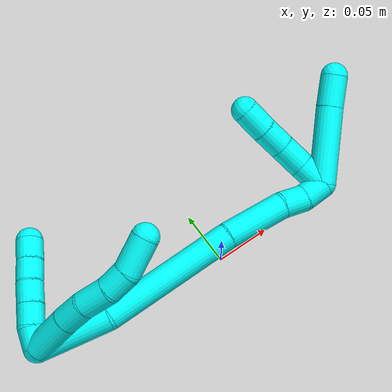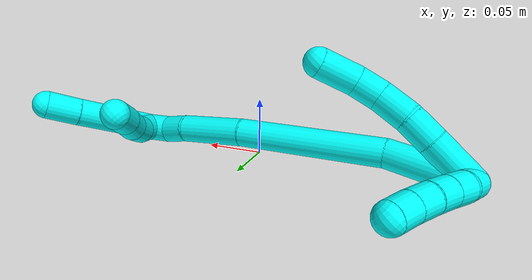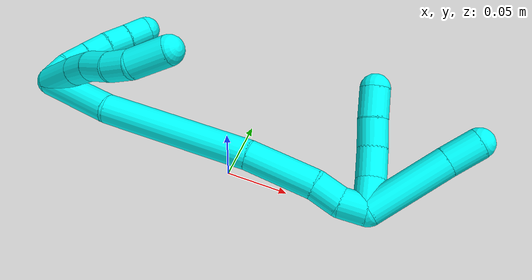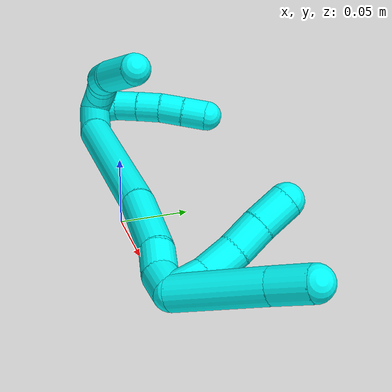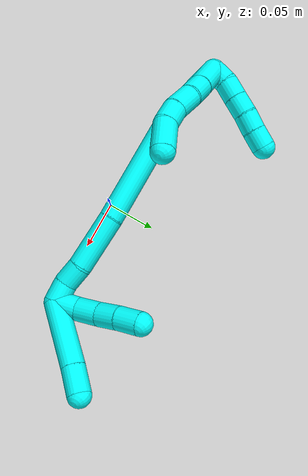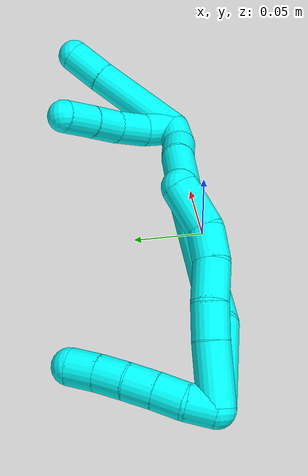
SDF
<sdf version="1.7">
 <world name="default">
  <model name="photoneo_s_sensor">
   <static>1</static>
   <pose>0 0 2 1.57079 1.57079 3.14159</pose>
   <link name="link">
    <inertial><mass>0.1</mass></inertial>
    <sensor name="sensor" type="depth">
     <update_rate>30</update_rate>
     <camera>
      <horizontal_fov>1.22</horizontal_fov>
      <image><width>1920</width><height>1200</height><format>B8G8R8</format></image>
      <clip><near>0.1</near><far>4</far></clip>
      <depth_camera><output>points</output></depth_camera>
     </camera>
     <plugin name="camera_plugin" filename="libgazebo_ros_depth_camera.so">
      <baseline>0.2</baseline>
      <alwaysOn>1</alwaysOn>
      <updateRate>0.0</updateRate>
      <cameraName>camera_ir</cameraName>
      <imageTopicName>/camera/color/image_raw</imageTopicName>
      <cameraInfoTopicName>/camera/color/camera_info</cameraInfoTopicName>
      <depthImageTopicName>/camera/depth/image_raw</depthImageTopicName>
      <depthImageCameraInfoTopicName>/camera/depth/camera_info</depthImageCameraInfoTopicName>
      <pointCloudTopicName>/camera/depth/points</pointCloudTopicName>
      <frameName>fr_optical</frameName>
      <pointCloudCutoff>0.1</pointCloudCutoff>
      <pointCloudCutoffMax>2.0</pointCloudCutoffMax>
      <distortionK1>0</distortionK1>
      <distortionK2>0</distortionK2>
      <distortionK3>0</distortionK3>
      <distortionT1>0</distortionT1>
      <distortionT2>0</distortionT2>
      <CxPrime>0</CxPrime>
      <Cx>0</Cx>
      <Cy>0</Cy>
      <focalLength>0</focalLength>
      <hackBaseline>0</hackBaseline>
     </plugin>
    </sensor>
   </link>
  </model>
  <model name="3">
   <static>0</static>
   <link name="3">
    <collision name="collision-cylinder-e_1_2_8">
     <pose>-0.000124 2e-06 0.021214 -0.000113 -0.005865 0</pose>
     <geometry><cylinder><radius>0.0125</radius><length>0.042429</length></cylinder></geometry>
     <surface>
      <friction><ode><mu>1.16</mu><mu2>1.16</mu2><slip1>0</slip1><slip2>0</slip2></ode></friction>
      <contact><ode><kp>1e+06</kp><kd>1</kd><max_vel>0</max_vel><min_depth>0.001</min_depth></ode></contact>
     </surface>
    </collision>
    <visual name="visual-cylinder-e_1_2_8">
     <pose>-0.000124 2e-06 0.021214 -0.000113 -0.005865 0</pose>
     <geometry><cylinder><radius>0.0125</radius><length>0.042429</length></cylinder></geometry>
     <material><ambient>0.003922 1 0.996078 1</ambient></material>
    </visual>
    <collision name="collision-cylinder-e_2_8_9">
     <pose>-0.000378 -0.000912 0.054638 0.074917 -0.01051 -0.000394</pose>
     <geometry><cylinder><radius>0.0125</radius><length>0.024489</length></cylinder></geometry>
     <surface>
      <friction><ode><mu>1.16</mu><mu2>1.16</mu2><slip1>0</slip1><slip2>0</slip2></ode></friction>
      <contact><ode><kp>1e+06</kp><kd>1</kd><max_vel>0</max_vel><min_depth>0.001</min_depth></ode></contact>
     </surface>
    </collision>
    <visual name="visual-cylinder-e_2_8_9">
     <pose>-0.000378 -0.000912 0.054638 0.074917 -0.01051 -0.000394</pose>
     <geometry><cylinder><radius>0.0125</radius><length>0.024489</length></cylinder></geometry>
     <material><ambient>0.003922 1 0.996078 1</ambient></material>
    </visual>
    <collision name="collision-cylinder-e_3_9_10">
     <pose>0.000328 -0.005057 0.079927 0.242002 0.061878 0.007526</pose>
     <geometry><cylinder><radius>0.0125</radius><length>0.026996</length></cylinder></geometry>
     <surface>
      <friction><ode><mu>1.16</mu><mu2>1.16</mu2><slip1>0</slip1><slip2>0</slip2></ode></friction>
      <contact><ode><kp>1e+06</kp><kd>1</kd><max_vel>0</max_vel><min_depth>0.001</min_depth></ode></contact>
     </surface>
    </collision>
    <visual name="visual-cylinder-e_3_9_10">
     <pose>0.000328 -0.005057 0.079927 0.242002 0.061878 0.007526</pose>
     <geometry><cylinder><radius>0.0125</radius><length>0.026996</length></cylinder></geometry>
     <material><ambient>0.003922 1 0.996078 1</ambient></material>
    </visual>
    <collision name="collision-cylinder-e_4_10_11">
     <pose>0.003674 -0.009218 0.104012 0.084574 0.223496 0.009496</pose>
     <geometry><cylinder><radius>0.0125</radius><length>0.022654</length></cylinder></geometry>
     <surface>
      <friction><ode><mu>1.16</mu><mu2>1.16</mu2><slip1>0</slip1><slip2>0</slip2></ode></friction>
      <contact><ode><kp>1e+06</kp><kd>1</kd><max_vel>0</max_vel><min_depth>0.001</min_depth></ode></contact>
     </surface>
    </collision>
    <visual name="visual-cylinder-e_4_10_11">
     <pose>0.003674 -0.009218 0.104012 0.084574 0.223496 0.009496</pose>
     <geometry><cylinder><radius>0.0125</radius><length>0.022654</length></cylinder></geometry>
     <material><ambient>0.003922 1 0.996078 1</ambient></material>
    </visual>
    <collision name="collision-cylinder-e_5_11_6">
     <pose>0.012835 -0.006734 0.129968 -0.224682 0.409229 -0.046814</pose>
     <geometry><cylinder><radius>0.0125</radius><length>0.033432</length></cylinder></geometry>
     <surface>
      <friction><ode><mu>1.16</mu><mu2>1.16</mu2><slip1>0</slip1><slip2>0</slip2></ode></friction>
      <contact><ode><kp>1e+06</kp><kd>1</kd><max_vel>0</max_vel><min_depth>0.001</min_depth></ode></contact>
     </surface>
    </collision>
    <visual name="visual-cylinder-e_5_11_6">
     <pose>0.012835 -0.006734 0.129968 -0.224682 0.409229 -0.046814</pose>
     <geometry><cylinder><radius>0.0125</radius><length>0.033432</length></cylinder></geometry>
     <material><ambient>0.003922 1 0.996078 1</ambient></material>
    </visual>
    <collision name="collision-cylinder-e_1_2_12">
     <pose>0.005981 0.00736 0.003172 -1.16393 0.641094 -0.430136</pose>
     <geometry><cylinder><radius>0.0125</radius><length>0.02</length></cylinder></geometry>
     <surface>
      <friction><ode><mu>1.16</mu><mu2>1.16</mu2><slip1>0</slip1><slip2>0</slip2></ode></friction>
      <contact><ode><kp>1e+06</kp><kd>1</kd><max_vel>0</max_vel><min_depth>0.001</min_depth></ode></contact>
     </surface>
    </collision>
    <visual name="visual-cylinder-e_1_2_12">
     <pose>0.005981 0.00736 0.003172 -1.16393 0.641094 -0.430136</pose>
     <geometry><cylinder><radius>0.0125</radius><length>0.02</length></cylinder></geometry>
     <material><ambient>0.003922 1 0.996078 1</ambient></material>
    </visual>
    <collision name="collision-cylinder-e_2_12_13">
     <pose>0.019248 0.020157 0.010509 -0.916892 0.816309 -0.420522</pose>
     <geometry><cylinder><radius>0.0125</radius><length>0.02</length></cylinder></geometry>
     <surface>
      <friction><ode><mu>1.16</mu><mu2>1.16</mu2><slip1>0</slip1><slip2>0</slip2></ode></friction>
      <contact><ode><kp>1e+06</kp><kd>1</kd><max_vel>0</max_vel><min_depth>0.001</min_depth></ode></contact>
     </surface>
    </collision>
    <visual name="visual-cylinder-e_2_12_13">
     <pose>0.019248 0.020157 0.010509 -0.916892 0.816309 -0.420522</pose>
     <geometry><cylinder><radius>0.0125</radius><length>0.02</length></cylinder></geometry>
     <material><ambient>0.003922 1 0.996078 1</ambient></material>
    </visual>
    <collision name="collision-cylinder-e_3_13_14">
     <pose>0.033984 0.031068 0.018486 -0.962806 0.84062 -0.458745</pose>
     <geometry><cylinder><radius>0.0125</radius><length>0.02</length></cylinder></geometry>
     <surface>
      <friction><ode><mu>1.16</mu><mu2>1.16</mu2><slip1>0</slip1><slip2>0</slip2></ode></friction>
      <contact><ode><kp>1e+06</kp><kd>1</kd><max_vel>0</max_vel><min_depth>0.001</min_depth></ode></contact>
     </surface>
    </collision>
    <visual name="visual-cylinder-e_3_13_14">
     <pose>0.033984 0.031068 0.018486 -0.962806 0.84062 -0.458745</pose>
     <geometry><cylinder><radius>0.0125</radius><length>0.02</length></cylinder></geometry>
     <material><ambient>0.003922 1 0.996078 1</ambient></material>
    </visual>
    <collision name="collision-cylinder-e_4_14_15">
     <pose>0.049536 0.041221 0.025829 -0.924003 0.944355 -0.498051</pose>
     <geometry><cylinder><radius>0.0125</radius><length>0.02</length></cylinder></geometry>
     <surface>
      <friction><ode><mu>1.16</mu><mu2>1.16</mu2><slip1>0</slip1><slip2>0</slip2></ode></friction>
      <contact><ode><kp>1e+06</kp><kd>1</kd><max_vel>0</max_vel><min_depth>0.001</min_depth></ode></contact>
     </surface>
    </collision>
    <visual name="visual-cylinder-e_4_14_15">
     <pose>0.049536 0.041221 0.025829 -0.924003 0.944355 -0.498051</pose>
     <geometry><cylinder><radius>0.0125</radius><length>0.02</length></cylinder></geometry>
     <material><ambient>0.003922 1 0.996078 1</ambient></material>
    </visual>
    <collision name="collision-cylinder-e_5_15_5">
     <pose>0.065791 0.050865 0.032338 -1.03086 0.953321 -0.569183</pose>
     <geometry><cylinder><radius>0.0125</radius><length>0.02</length></cylinder></geometry>
     <surface>
      <friction><ode><mu>1.16</mu><mu2>1.16</mu2><slip1>0</slip1><slip2>0</slip2></ode></friction>
      <contact><ode><kp>1e+06</kp><kd>1</kd><max_vel>0</max_vel><min_depth>0.001</min_depth></ode></contact>
     </surface>
    </collision>
    <visual name="visual-cylinder-e_5_15_5">
     <pose>0.065791 0.050865 0.032338 -1.03086 0.953321 -0.569183</pose>
     <geometry><cylinder><radius>0.0125</radius><length>0.02</length></cylinder></geometry>
     <material><ambient>0.003922 1 0.996078 1</ambient></material>
    </visual>
    <collision name="collision-cylinder-e_1_2_16">
     <pose>0.011794 -0.01589 0.027865 0.518268 0.352323 0.094307</pose>
     <geometry><cylinder><radius>0.0125</radius><length>0.068354</length></cylinder></geometry>
     <surface>
      <friction><ode><mu>1.16</mu><mu2>1.16</mu2><slip1>0</slip1><slip2>0</slip2></ode></friction>
      <contact><ode><kp>1e+06</kp><kd>1</kd><max_vel>0</max_vel><min_depth>0.001</min_depth></ode></contact>
     </surface>
    </collision>
    <visual name="visual-cylinder-e_1_2_16">
     <pose>0.011794 -0.01589 0.027865 0.518268 0.352323 0.094307</pose>
     <geometry><cylinder><radius>0.0125</radius><length>0.068354</length></cylinder></geometry>
     <material><ambient>0.003922 1 0.996078 1</ambient></material>
    </visual>
    <collision name="collision-cylinder-e_2_16_17">
     <pose>0.058976 -0.053987 0.104007 0.43111 0.587511 0.132279</pose>
     <geometry><cylinder><radius>0.0125</radius><length>0.127689</length></cylinder></geometry>
     <surface>
      <friction><ode><mu>1.16</mu><mu2>1.16</mu2><slip1>0</slip1><slip2>0</slip2></ode></friction>
      <contact><ode><kp>1e+06</kp><kd>1</kd><max_vel>0</max_vel><min_depth>0.001</min_depth></ode></contact>
     </surface>
    </collision>
    <visual name="visual-cylinder-e_2_16_17">
     <pose>0.058976 -0.053987 0.104007 0.43111 0.587511 0.132279</pose>
     <geometry><cylinder><radius>0.0125</radius><length>0.127689</length></cylinder></geometry>
     <material><ambient>0.003922 1 0.996078 1</ambient></material>
    </visual>
    <collision name="collision-cylinder-e_3_17_18">
     <pose>0.111045 -0.088831 0.172624 0.555987 0.608408 0.178714</pose>
     <geometry><cylinder><radius>0.0125</radius><length>0.058368</length></cylinder></geometry>
     <surface>
      <friction><ode><mu>1.16</mu><mu2>1.16</mu2><slip1>0</slip1><slip2>0</slip2></ode></friction>
      <contact><ode><kp>1e+06</kp><kd>1</kd><max_vel>0</max_vel><min_depth>0.001</min_depth></ode></contact>
     </surface>
    </collision>
    <visual name="visual-cylinder-e_3_17_18">
     <pose>0.111045 -0.088831 0.172624 0.555987 0.608408 0.178714</pose>
     <geometry><cylinder><radius>0.0125</radius><length>0.058368</length></cylinder></geometry>
     <material><ambient>0.003922 1 0.996078 1</ambient></material>
    </visual>
    <collision name="collision-cylinder-e_4_18_19">
     <pose>0.134207 -0.108446 0.199792 0.796178 0.586224 0.252494</pose>
     <geometry><cylinder><radius>0.0125</radius><length>0.023434</length></cylinder></geometry>
     <surface>
      <friction><ode><mu>1.16</mu><mu2>1.16</mu2><slip1>0</slip1><slip2>0</slip2></ode></friction>
      <contact><ode><kp>1e+06</kp><kd>1</kd><max_vel>0</max_vel><min_depth>0.001</min_depth></ode></contact>
     </surface>
    </collision>
    <visual name="visual-cylinder-e_4_18_19">
     <pose>0.134207 -0.108446 0.199792 0.796178 0.586224 0.252494</pose>
     <geometry><cylinder><radius>0.0125</radius><length>0.023434</length></cylinder></geometry>
     <material><ambient>0.003922 1 0.996078 1</ambient></material>
    </visual>
    <collision name="collision-cylinder-e_5_19_1">
     <pose>0.14714 -0.118952 0.214904 0.40281 0.621524 0.13096</pose>
     <geometry><cylinder><radius>0.0125</radius><length>0.022156</length></cylinder></geometry>
     <surface>
      <friction><ode><mu>1.16</mu><mu2>1.16</mu2><slip1>0</slip1><slip2>0</slip2></ode></friction>
      <contact><ode><kp>1e+06</kp><kd>1</kd><max_vel>0</max_vel><min_depth>0.001</min_depth></ode></contact>
     </surface>
    </collision>
    <visual name="visual-cylinder-e_5_19_1">
     <pose>0.14714 -0.118952 0.214904 0.40281 0.621524 0.13096</pose>
     <geometry><cylinder><radius>0.0125</radius><length>0.022156</length></cylinder></geometry>
     <material><ambient>0.003922 1 0.996078 1</ambient></material>
    </visual>
    <collision name="collision-cylinder-e_1_1_20">
     <pose>0.172865 -0.104497 0.246908 -0.648783 0.574651 -0.198087</pose>
     <geometry><cylinder><radius>0.0125</radius><length>0.070925</length></cylinder></geometry>
     <surface>
      <friction><ode><mu>1.16</mu><mu2>1.16</mu2><slip1>0</slip1><slip2>0</slip2></ode></friction>
      <contact><ode><kp>1e+06</kp><kd>1</kd><max_vel>0</max_vel><min_depth>0.001</min_depth></ode></contact>
     </surface>
    </collision>
    <visual name="visual-cylinder-e_1_1_20">
     <pose>0.172865 -0.104497 0.246908 -0.648783 0.574651 -0.198087</pose>
     <geometry><cylinder><radius>0.0125</radius><length>0.070925</length></cylinder></geometry>
     <material><ambient>0.003922 1 0.996078 1</ambient></material>
    </visual>
    <collision name="collision-cylinder-e_2_20_4">
     <pose>0.199949 -0.079639 0.280782 -0.59492 0.567007 -0.178158</pose>
     <geometry><cylinder><radius>0.0125</radius><length>0.029075</length></cylinder></geometry>
     <surface>
      <friction><ode><mu>1.16</mu><mu2>1.16</mu2><slip1>0</slip1><slip2>0</slip2></ode></friction>
      <contact><ode><kp>1e+06</kp><kd>1</kd><max_vel>0</max_vel><min_depth>0.001</min_depth></ode></contact>
     </surface>
    </collision>
    <visual name="visual-cylinder-e_2_20_4">
     <pose>0.199949 -0.079639 0.280782 -0.59492 0.567007 -0.178158</pose>
     <geometry><cylinder><radius>0.0125</radius><length>0.029075</length></cylinder></geometry>
     <material><ambient>0.003922 1 0.996078 1</ambient></material>
    </visual>
    <collision name="collision-cylinder-e_1_1_21">
     <pose>0.157285 -0.110263 0.222362 -1.63839 0.293003 -0.313186</pose>
     <geometry><cylinder><radius>0.0125</radius><length>0.025585</length></cylinder></geometry>
     <surface>
      <friction><ode><mu>1.16</mu><mu2>1.16</mu2><slip1>0</slip1><slip2>0</slip2></ode></friction>
      <contact><ode><kp>1e+06</kp><kd>1</kd><max_vel>0</max_vel><min_depth>0.001</min_depth></ode></contact>
     </surface>
    </collision>
    <visual name="visual-cylinder-e_1_1_21">
     <pose>0.157285 -0.110263 0.222362 -1.63839 0.293003 -0.313186</pose>
     <geometry><cylinder><radius>0.0125</radius><length>0.025585</length></cylinder></geometry>
     <material><ambient>0.003922 1 0.996078 1</ambient></material>
    </visual>
    <collision name="collision-cylinder-e_2_21_22">
     <pose>0.162153 -0.085162 0.222165 -1.52189 0.090732 -0.086406</pose>
     <geometry><cylinder><radius>0.0125</radius><length>0.025901</length></cylinder></geometry>
     <surface>
      <friction><ode><mu>1.16</mu><mu2>1.16</mu2><slip1>0</slip1><slip2>0</slip2></ode></friction>
      <contact><ode><kp>1e+06</kp><kd>1</kd><max_vel>0</max_vel><min_depth>0.001</min_depth></ode></contact>
     </surface>
    </collision>
    <visual name="visual-cylinder-e_2_21_22">
     <pose>0.162153 -0.085162 0.222165 -1.52189 0.090732 -0.086406</pose>
     <geometry><cylinder><radius>0.0125</radius><length>0.025901</length></cylinder></geometry>
     <material><ambient>0.003922 1 0.996078 1</ambient></material>
    </visual>
    <collision name="collision-cylinder-e_3_22_23">
     <pose>0.163056 -0.060685 0.223863 -1.47904 -0.023216 0.021178</pose>
     <geometry><cylinder><radius>0.0125</radius><length>0.023295</length></cylinder></geometry>
     <surface>
      <friction><ode><mu>1.16</mu><mu2>1.16</mu2><slip1>0</slip1><slip2>0</slip2></ode></friction>
      <contact><ode><kp>1e+06</kp><kd>1</kd><max_vel>0</max_vel><min_depth>0.001</min_depth></ode></contact>
     </surface>
    </collision>
    <visual name="visual-cylinder-e_3_22_23">
     <pose>0.163056 -0.060685 0.223863 -1.47904 -0.023216 0.021178</pose>
     <geometry><cylinder><radius>0.0125</radius><length>0.023295</length></cylinder></geometry>
     <material><ambient>0.003922 1 0.996078 1</ambient></material>
    </visual>
    <collision name="collision-cylinder-e_4_23_3">
     <pose>0.163444 -0.036563 0.226208 -1.46912 0.052273 -0.047213</pose>
     <geometry><cylinder><radius>0.0125</radius><length>0.025219</length></cylinder></geometry>
     <surface>
      <friction><ode><mu>1.16</mu><mu2>1.16</mu2><slip1>0</slip1><slip2>0</slip2></ode></friction>
      <contact><ode><kp>1e+06</kp><kd>1</kd><max_vel>0</max_vel><min_depth>0.001</min_depth></ode></contact>
     </surface>
    </collision>
    <visual name="visual-cylinder-e_4_23_3">
     <pose>0.163444 -0.036563 0.226208 -1.46912 0.052273 -0.047213</pose>
     <geometry><cylinder><radius>0.0125</radius><length>0.025219</length></cylinder></geometry>
     <material><ambient>0.003922 1 0.996078 1</ambient></material>
    </visual>
    <collision name="collision-sphere-3">
     <pose>0.164103 -0.024035 0.227486 0 -0 0</pose>
     <geometry><sphere><radius>0.0125</radius></sphere></geometry>
     <surface>
      <friction><ode><mu>1.16</mu><mu2>1.16</mu2><slip1>0</slip1><slip2>0</slip2></ode></friction>
      <contact><ode><kp>1e+06</kp><kd>1</kd><max_vel>0</max_vel><min_depth>0.001</min_depth></ode></contact>
     </surface>
    </collision>
    <visual name="visual-sphere-3">
     <pose>0.164103 -0.024035 0.227486 0 -0 0</pose>
     <geometry><sphere><radius>0.0125</radius></sphere></geometry>
     <material><ambient>0.003922 1 0.996078 1</ambient></material>
    </visual>
    <collision name="collision-sphere-23">
     <pose>0.162786 -0.04909 0.22493 0 -0 0</pose>
     <geometry><sphere><radius>0.0125</radius></sphere></geometry>
     <surface>
      <friction><ode><mu>1.16</mu><mu2>1.16</mu2><slip1>0</slip1><slip2>0</slip2></ode></friction>
      <contact><ode><kp>1e+06</kp><kd>1</kd><max_vel>0</max_vel><min_depth>0.001</min_depth></ode></contact>
     </surface>
    </collision>
    <visual name="visual-sphere-23">
     <pose>0.162786 -0.04909 0.22493 0 -0 0</pose>
     <geometry><sphere><radius>0.0125</radius></sphere></geometry>
     <material><ambient>0.003922 1 0.996078 1</ambient></material>
    </visual>
    <collision name="collision-sphere-22">
     <pose>0.163326 -0.07228 0.222796 0 -0 0</pose>
     <geometry><sphere><radius>0.0125</radius></sphere></geometry>
     <surface>
      <friction><ode><mu>1.16</mu><mu2>1.16</mu2><slip1>0</slip1><slip2>0</slip2></ode></friction>
      <contact><ode><kp>1e+06</kp><kd>1</kd><max_vel>0</max_vel><min_depth>0.001</min_depth></ode></contact>
     </surface>
    </collision>
    <visual name="visual-sphere-22">
     <pose>0.163326 -0.07228 0.222796 0 -0 0</pose>
     <geometry><sphere><radius>0.0125</radius></sphere></geometry>
     <material><ambient>0.003922 1 0.996078 1</ambient></material>
    </visual>
    <collision name="collision-sphere-21">
     <pose>0.16098 -0.098044 0.221535 0 -0 0</pose>
     <geometry><sphere><radius>0.0125</radius></sphere></geometry>
     <surface>
      <friction><ode><mu>1.16</mu><mu2>1.16</mu2><slip1>0</slip1><slip2>0</slip2></ode></friction>
      <contact><ode><kp>1e+06</kp><kd>1</kd><max_vel>0</max_vel><min_depth>0.001</min_depth></ode></contact>
     </surface>
    </collision>
    <visual name="visual-sphere-21">
     <pose>0.16098 -0.098044 0.221535 0 -0 0</pose>
     <geometry><sphere><radius>0.0125</radius></sphere></geometry>
     <material><ambient>0.003922 1 0.996078 1</ambient></material>
    </visual>
    <collision name="collision-sphere-4">
     <pose>0.207757 -0.072767 0.290938 0 -0 0</pose>
     <geometry><sphere><radius>0.0125</radius></sphere></geometry>
     <surface>
      <friction><ode><mu>1.16</mu><mu2>1.16</mu2><slip1>0</slip1><slip2>0</slip2></ode></friction>
      <contact><ode><kp>1e+06</kp><kd>1</kd><max_vel>0</max_vel><min_depth>0.001</min_depth></ode></contact>
     </surface>
    </collision>
    <visual name="visual-sphere-4">
     <pose>0.207757 -0.072767 0.290938 0 -0 0</pose>
     <geometry><sphere><radius>0.0125</radius></sphere></geometry>
     <material><ambient>0.003922 1 0.996078 1</ambient></material>
    </visual>
    <collision name="collision-sphere-20">
     <pose>0.19214 -0.086512 0.270626 0 -0 0</pose>
     <geometry><sphere><radius>0.0125</radius></sphere></geometry>
     <surface>
      <friction><ode><mu>1.16</mu><mu2>1.16</mu2><slip1>0</slip1><slip2>0</slip2></ode></friction>
      <contact><ode><kp>1e+06</kp><kd>1</kd><max_vel>0</max_vel><min_depth>0.001</min_depth></ode></contact>
     </surface>
    </collision>
    <visual name="visual-sphere-20">
     <pose>0.19214 -0.086512 0.270626 0 -0 0</pose>
     <geometry><sphere><radius>0.0125</radius></sphere></geometry>
     <material><ambient>0.003922 1 0.996078 1</ambient></material>
    </visual>
    <collision name="collision-sphere-6">
     <pose>0.019487 -0.003318 0.144919 0 -0 0</pose>
     <geometry><sphere><radius>0.0125</radius></sphere></geometry>
     <surface>
      <friction><ode><mu>1.16</mu><mu2>1.16</mu2><slip1>0</slip1><slip2>0</slip2></ode></friction>
      <contact><ode><kp>1e+06</kp><kd>1</kd><max_vel>0</max_vel><min_depth>0.001</min_depth></ode></contact>
     </surface>
    </collision>
    <visual name="visual-sphere-6">
     <pose>0.019487 -0.003318 0.144919 0 -0 0</pose>
     <geometry><sphere><radius>0.0125</radius></sphere></geometry>
     <material><ambient>0.003922 1 0.996078 1</ambient></material>
    </visual>
    <collision name="collision-sphere-11">
     <pose>0.006184 -0.010151 0.115018 0 -0 0</pose>
     <geometry><sphere><radius>0.0125</radius></sphere></geometry>
     <surface>
      <friction><ode><mu>1.16</mu><mu2>1.16</mu2><slip1>0</slip1><slip2>0</slip2></ode></friction>
      <contact><ode><kp>1e+06</kp><kd>1</kd><max_vel>0</max_vel><min_depth>0.001</min_depth></ode></contact>
     </surface>
    </collision>
    <visual name="visual-sphere-11">
     <pose>0.006184 -0.010151 0.115018 0 -0 0</pose>
     <geometry><sphere><radius>0.0125</radius></sphere></geometry>
     <material><ambient>0.003922 1 0.996078 1</ambient></material>
    </visual>
    <collision name="collision-sphere-10">
     <pose>0.001163 -0.008285 0.093007 0 -0 0</pose>
     <geometry><sphere><radius>0.0125</radius></sphere></geometry>
     <surface>
      <friction><ode><mu>1.16</mu><mu2>1.16</mu2><slip1>0</slip1><slip2>0</slip2></ode></friction>
      <contact><ode><kp>1e+06</kp><kd>1</kd><max_vel>0</max_vel><min_depth>0.001</min_depth></ode></contact>
     </surface>
    </collision>
    <visual name="visual-sphere-10">
     <pose>0.001163 -0.008285 0.093007 0 -0 0</pose>
     <geometry><sphere><radius>0.0125</radius></sphere></geometry>
     <material><ambient>0.003922 1 0.996078 1</ambient></material>
    </visual>
    <collision name="collision-sphere-9">
     <pose>-0.000506 -0.001828 0.066848 0 -0 0</pose>
     <geometry><sphere><radius>0.0125</radius></sphere></geometry>
     <surface>
      <friction><ode><mu>1.16</mu><mu2>1.16</mu2><slip1>0</slip1><slip2>0</slip2></ode></friction>
      <contact><ode><kp>1e+06</kp><kd>1</kd><max_vel>0</max_vel><min_depth>0.001</min_depth></ode></contact>
     </surface>
    </collision>
    <visual name="visual-sphere-9">
     <pose>-0.000506 -0.001828 0.066848 0 -0 0</pose>
     <geometry><sphere><radius>0.0125</radius></sphere></geometry>
     <material><ambient>0.003922 1 0.996078 1</ambient></material>
    </visual>
    <collision name="collision-sphere-2">
     <geometry><sphere><radius>0.0125</radius></sphere></geometry>
     <surface>
      <friction><ode><mu>1.16</mu><mu2>1.16</mu2><slip1>0</slip1><slip2>0</slip2></ode></friction>
      <contact><ode><kp>1e+06</kp><kd>1</kd><max_vel>0</max_vel><min_depth>0.001</min_depth></ode></contact>
     </surface>
    </collision>
    <visual name="visual-sphere-2">
     <geometry><sphere><radius>0.0125</radius></sphere></geometry>
     <material><ambient>0.003922 1 0.996078 1</ambient></material>
    </visual>
    <collision name="collision-sphere-19">
     <pose>0.140689 -0.115422 0.206619 0 -0 0</pose>
     <geometry><sphere><radius>0.0125</radius></sphere></geometry>
     <surface>
      <friction><ode><mu>1.16</mu><mu2>1.16</mu2><slip1>0</slip1><slip2>0</slip2></ode></friction>
      <contact><ode><kp>1e+06</kp><kd>1</kd><max_vel>0</max_vel><min_depth>0.001</min_depth></ode></contact>
     </surface>
    </collision>
    <visual name="visual-sphere-19">
     <pose>0.140689 -0.115422 0.206619 0 -0 0</pose>
     <geometry><sphere><radius>0.0125</radius></sphere></geometry>
     <material><ambient>0.003922 1 0.996078 1</ambient></material>
    </visual>
    <collision name="collision-sphere-8">
     <pose>-0.000249 5e-06 0.042429 0 -0 0</pose>
     <geometry><sphere><radius>0.0125</radius></sphere></geometry>
     <surface>
      <friction><ode><mu>1.16</mu><mu2>1.16</mu2><slip1>0</slip1><slip2>0</slip2></ode></friction>
      <contact><ode><kp>1e+06</kp><kd>1</kd><max_vel>0</max_vel><min_depth>0.001</min_depth></ode></contact>
     </surface>
    </collision>
    <visual name="visual-sphere-8">
     <pose>-0.000249 5e-06 0.042429 0 -0 0</pose>
     <geometry><sphere><radius>0.0125</radius></sphere></geometry>
     <material><ambient>0.003922 1 0.996078 1</ambient></material>
    </visual>
    <collision name="collision-sphere-12">
     <pose>0.011961 0.01472 0.006343 0 -0 0</pose>
     <geometry><sphere><radius>0.0125</radius></sphere></geometry>
     <surface>
      <friction><ode><mu>1.16</mu><mu2>1.16</mu2><slip1>0</slip1><slip2>0</slip2></ode></friction>
      <contact><ode><kp>1e+06</kp><kd>1</kd><max_vel>0</max_vel><min_depth>0.001</min_depth></ode></contact>
     </surface>
    </collision>
    <visual name="visual-sphere-12">
     <pose>0.011961 0.01472 0.006343 0 -0 0</pose>
     <geometry><sphere><radius>0.0125</radius></sphere></geometry>
     <material><ambient>0.003922 1 0.996078 1</ambient></material>
    </visual>
    <collision name="collision-sphere-13">
     <pose>0.026534 0.025593 0.014676 0 -0 0</pose>
     <geometry><sphere><radius>0.0125</radius></sphere></geometry>
     <surface>
      <friction><ode><mu>1.16</mu><mu2>1.16</mu2><slip1>0</slip1><slip2>0</slip2></ode></friction>
      <contact><ode><kp>1e+06</kp><kd>1</kd><max_vel>0</max_vel><min_depth>0.001</min_depth></ode></contact>
     </surface>
    </collision>
    <visual name="visual-sphere-13">
     <pose>0.026534 0.025593 0.014676 0 -0 0</pose>
     <geometry><sphere><radius>0.0125</radius></sphere></geometry>
     <material><ambient>0.003922 1 0.996078 1</ambient></material>
    </visual>
    <collision name="collision-sphere-14">
     <pose>0.041435 0.036542 0.022296 0 -0 0</pose>
     <geometry><sphere><radius>0.0125</radius></sphere></geometry>
     <surface>
      <friction><ode><mu>1.16</mu><mu2>1.16</mu2><slip1>0</slip1><slip2>0</slip2></ode></friction>
      <contact><ode><kp>1e+06</kp><kd>1</kd><max_vel>0</max_vel><min_depth>0.001</min_depth></ode></contact>
     </surface>
    </collision>
    <visual name="visual-sphere-14">
     <pose>0.041435 0.036542 0.022296 0 -0 0</pose>
     <geometry><sphere><radius>0.0125</radius></sphere></geometry>
     <material><ambient>0.003922 1 0.996078 1</ambient></material>
    </visual>
    <collision name="collision-sphere-15">
     <pose>0.057637 0.045899 0.029362 0 -0 0</pose>
     <geometry><sphere><radius>0.0125</radius></sphere></geometry>
     <surface>
      <friction><ode><mu>1.16</mu><mu2>1.16</mu2><slip1>0</slip1><slip2>0</slip2></ode></friction>
      <contact><ode><kp>1e+06</kp><kd>1</kd><max_vel>0</max_vel><min_depth>0.001</min_depth></ode></contact>
     </surface>
    </collision>
    <visual name="visual-sphere-15">
     <pose>0.057637 0.045899 0.029362 0 -0 0</pose>
     <geometry><sphere><radius>0.0125</radius></sphere></geometry>
     <material><ambient>0.003922 1 0.996078 1</ambient></material>
    </visual>
    <collision name="collision-sphere-5">
     <pose>0.073944 0.055832 0.035315 0 -0 0</pose>
     <geometry><sphere><radius>0.0125</radius></sphere></geometry>
     <surface>
      <friction><ode><mu>1.16</mu><mu2>1.16</mu2><slip1>0</slip1><slip2>0</slip2></ode></friction>
      <contact><ode><kp>1e+06</kp><kd>1</kd><max_vel>0</max_vel><min_depth>0.001</min_depth></ode></contact>
     </surface>
    </collision>
    <visual name="visual-sphere-5">
     <pose>0.073944 0.055832 0.035315 0 -0 0</pose>
     <geometry><sphere><radius>0.0125</radius></sphere></geometry>
     <material><ambient>0.003922 1 0.996078 1</ambient></material>
    </visual>
    <collision name="collision-sphere-16">
     <pose>0.023587 -0.031781 0.05573 0 -0 0</pose>
     <geometry><sphere><radius>0.0125</radius></sphere></geometry>
     <surface>
      <friction><ode><mu>1.16</mu><mu2>1.16</mu2><slip1>0</slip1><slip2>0</slip2></ode></friction>
      <contact><ode><kp>1e+06</kp><kd>1</kd><max_vel>0</max_vel><min_depth>0.001</min_depth></ode></contact>
     </surface>
    </collision>
    <visual name="visual-sphere-16">
     <pose>0.023587 -0.031781 0.05573 0 -0 0</pose>
     <geometry><sphere><radius>0.0125</radius></sphere></geometry>
     <material><ambient>0.003922 1 0.996078 1</ambient></material>
    </visual>
    <collision name="collision-sphere-17">
     <pose>0.094364 -0.076192 0.152284 0 -0 0</pose>
     <geometry><sphere><radius>0.0125</radius></sphere></geometry>
     <surface>
      <friction><ode><mu>1.16</mu><mu2>1.16</mu2><slip1>0</slip1><slip2>0</slip2></ode></friction>
      <contact><ode><kp>1e+06</kp><kd>1</kd><max_vel>0</max_vel><min_depth>0.001</min_depth></ode></contact>
     </surface>
    </collision>
    <visual name="visual-sphere-17">
     <pose>0.094364 -0.076192 0.152284 0 -0 0</pose>
     <geometry><sphere><radius>0.0125</radius></sphere></geometry>
     <material><ambient>0.003922 1 0.996078 1</ambient></material>
    </visual>
    <collision name="collision-sphere-18">
     <pose>0.127725 -0.10147 0.192965 0 -0 0</pose>
     <geometry><sphere><radius>0.0125</radius></sphere></geometry>
     <surface>
      <friction><ode><mu>1.16</mu><mu2>1.16</mu2><slip1>0</slip1><slip2>0</slip2></ode></friction>
      <contact><ode><kp>1e+06</kp><kd>1</kd><max_vel>0</max_vel><min_depth>0.001</min_depth></ode></contact>
     </surface>
    </collision>
    <visual name="visual-sphere-18">
     <pose>0.127725 -0.10147 0.192965 0 -0 0</pose>
     <geometry><sphere><radius>0.0125</radius></sphere></geometry>
     <material><ambient>0.003922 1 0.996078 1</ambient></material>
    </visual>
    <collision name="collision-sphere-1">
     <pose>0.15359 -0.122483 0.223189 0 -0 0</pose>
     <geometry><sphere><radius>0.0125</radius></sphere></geometry>
     <surface>
      <friction><ode><mu>1.16</mu><mu2>1.16</mu2><slip1>0</slip1><slip2>0</slip2></ode></friction>
      <contact><ode><kp>1e+06</kp><kd>1</kd><max_vel>0</max_vel><min_depth>0.001</min_depth></ode></contact>
     </surface>
    </collision>
    <visual name="visual-sphere-1">
     <pose>0.15359 -0.122483 0.223189 0 -0 0</pose>
     <geometry><sphere><radius>0.0125</radius></sphere></geometry>
     <material><ambient>0.003922 1 0.996078 1</ambient></material>
    </visual>
    <inertial>
     <pose>0.079252 -0.044014 0.127529 0 -0 0</pose>
     <mass>0.75</mass>
     <inertia>
      <ixx>0.000295</ixx>
      <ixy>0</ixy>
      <ixz>0</ixz>
      <iyy>0.00029</iyy>
      <iyz>0</iyz>
      <izz>-5.8e-05</izz>
     </inertia>
    </inertial>
   </link>
   <pose>-0.180207 0.023789 0.010943 0.583397 0.658712 0.786844</pose>
  </model>
 </world>
</sdf>
